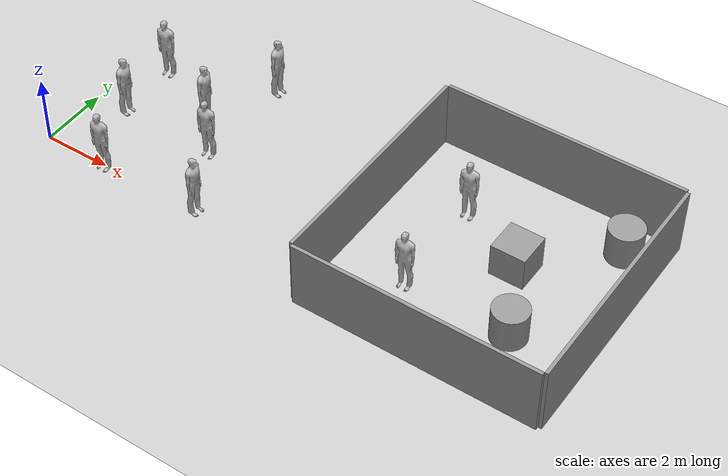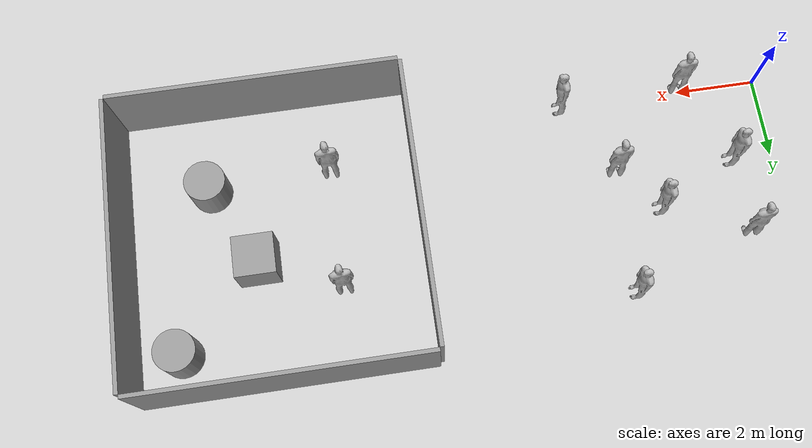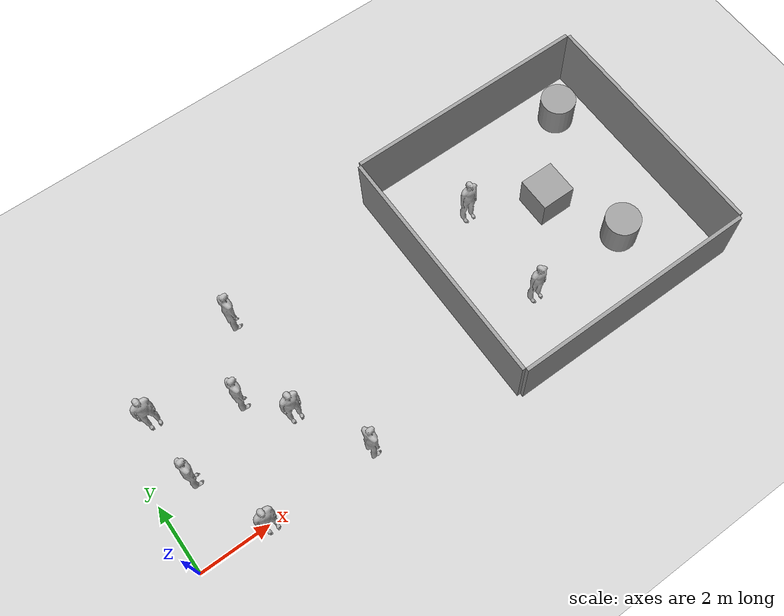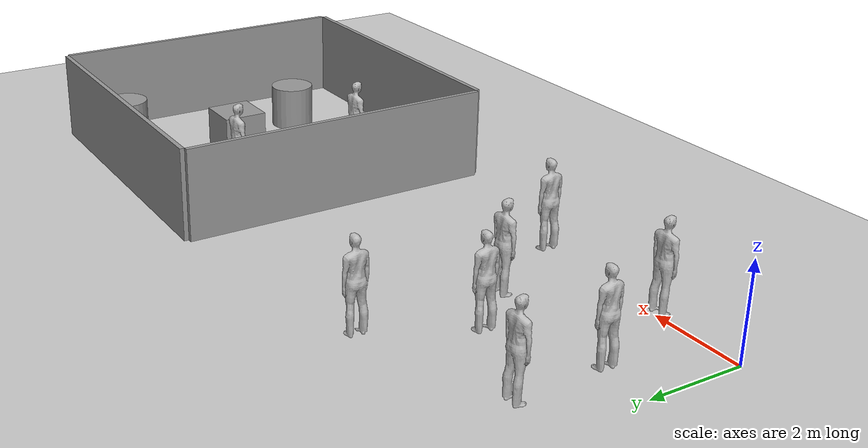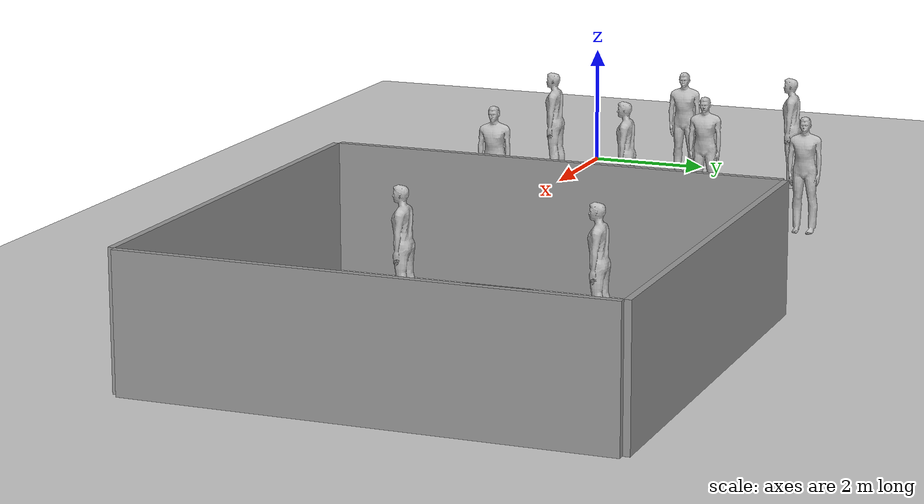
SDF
<sdf version='1.6'>
  <world name='default'>
    <include>
      <uri>model://ground_plane</uri>
    </include>

    <include>
      <uri>model://sun</uri>
    </include>

    <model name='wall_right_down'>
      <pose frame=''>10 0 0 0 0 0</pose>
      <link name='Wall_bottom'>
        <collision name='Wall_0_Collision'>
          <geometry>
            <box>
              <size>7 0.1 2</size>
            </box>
          </geometry>
          <pose frame=''>0 0 0 0 -0 0</pose>
          <max_contacts>10</max_contacts>
        </collision>
        <visual name='Wall_0_Visual'>
          <pose frame=''>0 0 0 0 -0 0</pose>
          <geometry>
            <box>
              <size>7 0.1 2</size>
            </box>
          </geometry>
          <material>
            <script>
              <uri>file://media/materials/scripts/gazebo.material</uri>
              <name>Gazebo/Grey</name>
            </script>
            <ambient>1 1 1 1</ambient>
          </material>
          <meta>
            <layer>0</layer>
          </meta>
        </visual>
        <pose frame=''>2.5 -1.05 1 0 -0 0</pose>
      </link>

      <link name='Wall_up'>
        <collision name='Wall_0_Collision'>
          <geometry>
            <box>
              <size>7 0.1 2</size>
            </box>
          </geometry>
          <pose frame=''>0 0 0 0 -0 0</pose>
          <max_contacts>10</max_contacts>
        </collision>
        <visual name='Wall_0_Visual'>
          <pose frame=''>0 0 0 0 -0 0</pose>
          <geometry>
            <box>
              <size>7 0.1 2</size>
            </box>
          </geometry>
          <material>
            <script>
              <uri>file://media/materials/scripts/gazebo.material</uri>
              <name>Gazebo/Grey</name>
            </script>
            <ambient>1 1 1 1</ambient>
          </material>
          <meta>
            <layer>0</layer>
          </meta>
        </visual>
        <pose frame=''>2.5 6.05 1 0 -0 0</pose>
      </link>

      <link name='Wall_left'>
        <collision name='Wall_1_Collision'>
          <geometry>
            <box>
              <size>0.1 7 2</size>
            </box>
          </geometry>
          <pose frame=''>0 0 0 0 -0 0</pose>
          <max_contacts>10</max_contacts>
        </collision>
        <visual name='Wall_1_Visual'>
          <pose frame=''>0 0 0 0 -0 0</pose>
          <geometry>
            <box>
              <size>0.1 7 2</size>
            </box>
          </geometry>
          <material>
            <script>
              <uri>file://media/materials/scripts/gazebo.material</uri>
              <name>Gazebo/Grey</name>
            </script>
            <ambient>1 1 1 1</ambient>
          </material>
          <meta>
            <layer>0</layer>
          </meta>
        </visual>
        <pose frame=''>-1.05 2.5 1 0 -0 0</pose>
      </link>

      <link name='Wall_right'>
        <collision name='Wall_1_Collision'>
          <geometry>
            <box>
              <size>0.1 7 2</size>
            </box>
          </geometry>
          <pose frame=''>0 0 0 0 -0 0</pose>
          <max_contacts>10</max_contacts>
        </collision>
        <visual name='Wall_1_Visual'>
          <pose frame=''>0 0 0 0 -0 0</pose>
          <geometry>
            <box>
              <size>0.1 7 2</size>
            </box>
          </geometry>
          <material>
            <script>
              <uri>file://media/materials/scripts/gazebo.material</uri>
              <name>Gazebo/Grey</name>
            </script>
            <ambient>1 1 1 1</ambient>
          </material>
          <meta>
            <layer>0</layer>
          </meta>
        </visual>
        <pose frame=''>6.05 2.5 1 0 -0 0</pose>
      </link>
      <static>1</static>
    </model>

    <model name='stand0'>
      <link name='link'>
        <inertial>
          <pose frame=''>0 -0.1 0.95 0 -0 0</pose>
          <mass>80</mass>
          <inertia>
            <ixx>24.88</ixx>
            <ixy>0</ixy>
            <ixz>0</ixz>
            <iyy>25.73</iyy>
            <iyz>0</iyz>
            <izz>2.48</izz>
          </inertia>
        </inertial>
        <collision name='bottom'>
          <pose frame=''>0 -0.1 0.01 0 -0 0</pose>
          <geometry>
            <box>
              <size>0.5 0.35 0.02</size>
            </box>
          </geometry>
          <max_contacts>10</max_contacts>
          <surface>
            <contact>
              <ode/>
            </contact>
            <bounce/>
            <friction>
              <torsional>
                <ode/>
              </torsional>
              <ode/>
            </friction>
          </surface>
        </collision>
        <collision name='person'>
          <pose frame=''>0 0 0.02 0.04 -0 0</pose>
          <geometry>
            <mesh>
              <uri>model://person_standing/meshes/standing.dae</uri>
            </mesh>
          </geometry>
          <max_contacts>10</max_contacts>
          <surface>
            <contact>
              <ode/>
            </contact>
            <bounce/>
            <friction>
              <torsional>
                <ode/>
              </torsional>
              <ode/>
            </friction>
          </surface>
        </collision>
        <visual name='visual'>
          <pose frame=''>0 0 0.02 0.04 -0 0</pose>
          <geometry>
            <mesh>
              <uri>model://person_standing/meshes/standing.dae</uri>
            </mesh>
          </geometry>
        </visual>
        <self_collide>0</self_collide>
        <enable_wind>0</enable_wind>
        <kinematic>0</kinematic>
      </link>
      <pose frame=''>1 4 0 0 -0 0</pose>
    </model>

    <model name='stand6'>
      <link name='link'>
        <inertial>
          <pose frame=''>0 -0.1 0.95 0 -0 0</pose>
          <mass>80</mass>
          <inertia>
            <ixx>24.88</ixx>
            <ixy>0</ixy>
            <ixz>0</ixz>
            <iyy>25.73</iyy>
            <iyz>0</iyz>
            <izz>2.48</izz>
          </inertia>
        </inertial>
        <collision name='bottom'>
          <pose frame=''>0 -0.1 0.01 0 -0 0</pose>
          <geometry>
            <box>
              <size>0.5 0.35 0.02</size>
            </box>
          </geometry>
          <max_contacts>10</max_contacts>
          <surface>
            <contact>
              <ode/>
            </contact>
            <bounce/>
            <friction>
              <torsional>
                <ode/>
              </torsional>
              <ode/>
            </friction>
          </surface>
        </collision>
        <collision name='person'>
          <pose frame=''>0 0 0.02 0.04 -0 0</pose>
          <geometry>
            <mesh>
              <uri>model://person_standing/meshes/standing.dae</uri>
            </mesh>
          </geometry>
          <max_contacts>10</max_contacts>
          <surface>
            <contact>
              <ode/>
            </contact>
            <bounce/>
            <friction>
              <torsional>
                <ode/>
              </torsional>
              <ode/>
            </friction>
          </surface>
        </collision>
        <visual name='visual'>
          <pose frame=''>0 0 0.02 0.04 -0 0</pose>
          <geometry>
            <mesh>
              <uri>model://person_standing/meshes/standing.dae</uri>
            </mesh>
          </geometry>
        </visual>
        <self_collide>0</self_collide>
        <enable_wind>0</enable_wind>
        <kinematic>0</kinematic>
      </link>
      <pose frame=''>4 2 0 0 -0 0</pose>
    </model>

    <model name='stand7'>
      <link name='link'>
        <inertial>
          <pose frame=''>0 -0.1 0.95 0 -0 0</pose>
          <mass>80</mass>
          <inertia>
            <ixx>24.88</ixx>
            <ixy>0</ixy>
            <ixz>0</ixz>
            <iyy>25.73</iyy>
            <iyz>0</iyz>
            <izz>2.48</izz>
          </inertia>
        </inertial>
        <collision name='bottom'>
          <pose frame=''>0 -0.1 0.01 0 -0 0</pose>
          <geometry>
            <box>
              <size>0.5 0.35 0.02</size>
            </box>
          </geometry>
          <max_contacts>10</max_contacts>
          <surface>
            <contact>
              <ode/>
            </contact>
            <bounce/>
            <friction>
              <torsional>
                <ode/>
              </torsional>
              <ode/>
            </friction>
          </surface>
        </collision>
        <collision name='person'>
          <pose frame=''>0 0 0.02 0.04 -0 0</pose>
          <geometry>
            <mesh>
              <uri>model://person_standing/meshes/standing.dae</uri>
            </mesh>
          </geometry>
          <max_contacts>10</max_contacts>
          <surface>
            <contact>
              <ode/>
            </contact>
            <bounce/>
            <friction>
              <torsional>
                <ode/>
              </torsional>
              <ode/>
            </friction>
          </surface>
        </collision>
        <visual name='visual'>
          <pose frame=''>0 0 0.02 0.04 -0 0</pose>
          <geometry>
            <mesh>
              <uri>model://person_standing/meshes/standing.dae</uri>
            </mesh>
          </geometry>
        </visual>
        <self_collide>0</self_collide>
        <enable_wind>0</enable_wind>
        <kinematic>0</kinematic>
      </link>
      <pose frame=''>3 3 0 0 -0 1.57</pose>
    </model>

    <model name='stand8'>
      <link name='link'>
        <inertial>
          <pose frame=''>0 -0.1 0.95 0 -0 0</pose>
          <mass>80</mass>
          <inertia>
            <ixx>24.88</ixx>
            <ixy>0</ixy>
            <ixz>0</ixz>
            <iyy>25.73</iyy>
            <iyz>0</iyz>
            <izz>2.48</izz>
          </inertia>
        </inertial>
        <collision name='bottom'>
          <pose frame=''>0 -0.1 0.01 0 -0 0</pose>
          <geometry>
            <box>
              <size>0.5 0.35 0.02</size>
            </box>
          </geometry>
          <max_contacts>10</max_contacts>
          <surface>
            <contact>
              <ode/>
            </contact>
            <bounce/>
            <friction>
              <torsional>
                <ode/>
              </torsional>
              <ode/>
            </friction>
          </surface>
        </collision>
        <collision name='person'>
          <pose frame=''>0 0 0.02 0.04 -0 0</pose>
          <geometry>
            <mesh>
              <uri>model://person_standing/meshes/standing.dae</uri>
            </mesh>
          </geometry>
          <max_contacts>10</max_contacts>
          <surface>
            <contact>
              <ode/>
            </contact>
            <bounce/>
            <friction>
              <torsional>
                <ode/>
              </torsional>
              <ode/>
            </friction>
          </surface>
        </collision>
        <visual name='visual'>
          <pose frame=''>0 0 0.02 0.04 -0 0</pose>
          <geometry>
            <mesh>
              <uri>model://person_standing/meshes/standing.dae</uri>
            </mesh>
          </geometry>
        </visual>
        <self_collide>0</self_collide>
        <enable_wind>0</enable_wind>
        <kinematic>0</kinematic>
      </link>
      <pose frame=''>1 2 0 0 -0 1.57</pose>
    </model>

    <model name='stand1'>
      <link name='link'>
        <inertial>
          <pose frame=''>0 -0.1 0.95 0 -0 0</pose>
          <mass>80</mass>
          <inertia>
            <ixx>24.88</ixx>
            <ixy>0</ixy>
            <ixz>0</ixz>
            <iyy>25.73</iyy>
            <iyz>0</iyz>
            <izz>2.48</izz>
          </inertia>
        </inertial>
        <collision name='bottom'>
          <pose frame=''>0 -0.1 0.01 0 -0 0</pose>
          <geometry>
            <box>
              <size>0.5 0.35 0.02</size>
            </box>
          </geometry>
          <max_contacts>10</max_contacts>
          <surface>
            <contact>
              <ode/>
            </contact>
            <bounce/>
            <friction>
              <torsional>
                <ode/>
              </torsional>
              <ode/>
            </friction>
          </surface>
        </collision>
        <collision name='person'>
          <pose frame=''>0 0 0.02 0.04 -0 0</pose>
          <geometry>
            <mesh>
              <uri>model://person_standing/meshes/standing.dae</uri>
            </mesh>
          </geometry>
          <max_contacts>10</max_contacts>
          <surface>
            <contact>
              <ode/>
            </contact>
            <bounce/>
            <friction>
              <torsional>
                <ode/>
              </torsional>
              <ode/>
            </friction>
          </surface>
        </collision>
        <visual name='visual'>
          <pose frame=''>0 0 0.02 0.04 -0 0</pose>
          <geometry>
            <mesh>
              <uri>model://person_standing/meshes/standing.dae</uri>
            </mesh>
          </geometry>
        </visual>
        <self_collide>0</self_collide>
        <enable_wind>0</enable_wind>
        <kinematic>0</kinematic>
      </link>
      <pose frame=''>5 0 0 -0 0 1.57</pose>
    </model>

    <model name='stand2'>
      <link name='link'>
        <inertial>
          <pose frame=''>0 -0.1 0.95 0 -0 0</pose>
          <mass>80</mass>
          <inertia>
            <ixx>24.88</ixx>
            <ixy>0</ixy>
            <ixz>0</ixz>
            <iyy>25.73</iyy>
            <iyz>0</iyz>
            <izz>2.48</izz>
          </inertia>
        </inertial>
        <collision name='bottom'>
          <pose frame=''>0 -0.1 0.01 0 -0 0</pose>
          <geometry>
            <box>
              <size>0.5 0.35 0.02</size>
            </box>
          </geometry>
          <max_contacts>10</max_contacts>
          <surface>
            <contact>
              <ode/>
            </contact>
            <bounce/>
            <friction>
              <torsional>
                <ode/>
              </torsional>
              <ode/>
            </friction>
          </surface>
        </collision>
        <collision name='person'>
          <pose frame=''>0 0 0.02 0.04 -0 0</pose>
          <geometry>
            <mesh>
              <uri>model://person_standing/meshes/standing.dae</uri>
            </mesh>
          </geometry>
          <max_contacts>10</max_contacts>
          <surface>
            <contact>
              <ode/>
            </contact>
            <bounce/>
            <friction>
              <torsional>
                <ode/>
              </torsional>
              <ode/>
            </friction>
          </surface>
        </collision>
        <visual name='visual'>
          <pose frame=''>0 0 0.02 0.04 -0 0</pose>
          <geometry>
            <mesh>
              <uri>model://person_standing/meshes/standing.dae</uri>
            </mesh>
          </geometry>
        </visual>
        <self_collide>0</self_collide>
        <enable_wind>0</enable_wind>
        <kinematic>0</kinematic>
      </link>
      <pose frame=''>4 5 0 -0 0 1.57</pose>
    </model>

    <model name='stand3'>
      <link name='link'>
        <inertial>
          <pose frame=''>0 -0.1 0.95 0 -0 0</pose>
          <mass>80</mass>
          <inertia>
            <ixx>24.88</ixx>
            <ixy>0</ixy>
            <ixz>0</ixz>
            <iyy>25.73</iyy>
            <iyz>0</iyz>
            <izz>2.48</izz>
          </inertia>
        </inertial>
        <collision name='bottom'>
          <pose frame=''>0 -0.1 0.01 0 -0 0</pose>
          <geometry>
            <box>
              <size>0.5 0.35 0.02</size>
            </box>
          </geometry>
          <max_contacts>10</max_contacts>
          <surface>
            <contact>
              <ode/>
            </contact>
            <bounce/>
            <friction>
              <torsional>
                <ode/>
              </torsional>
              <ode/>
            </friction>
          </surface>
        </collision>
        <collision name='person'>
          <pose frame=''>0 0 0.02 0.04 -0 0</pose>
          <geometry>
            <mesh>
              <uri>model://person_standing/meshes/standing.dae</uri>
            </mesh>
          </geometry>
          <max_contacts>10</max_contacts>
          <surface>
            <contact>
              <ode/>
            </contact>
            <bounce/>
            <friction>
              <torsional>
                <ode/>
              </torsional>
              <ode/>
            </friction>
          </surface>
        </collision>
        <visual name='visual'>
          <pose frame=''>0 0 0.02 0.04 -0 0</pose>
          <geometry>
            <mesh>
              <uri>model://person_standing/meshes/standing.dae</uri>
            </mesh>
          </geometry>
        </visual>
        <self_collide>0</self_collide>
        <enable_wind>0</enable_wind>
        <kinematic>0</kinematic>
      </link>
      <pose frame=''>2 0 0 -0 0 0</pose>
    </model>

    <model name='stand4'>
      <link name='link'>
        <inertial>
          <pose frame=''>0 -0.1 0.95 0 -0 0</pose>
          <mass>80</mass>
          <inertia>
            <ixx>24.88</ixx>
            <ixy>0</ixy>
            <ixz>0</ixz>
            <iyy>25.73</iyy>
            <iyz>0</iyz>
            <izz>2.48</izz>
          </inertia>
        </inertial>
        <collision name='bottom'>
          <pose frame=''>0 -0.1 0.01 0 -0 0</pose>
          <geometry>
            <box>
              <size>0.5 0.35 0.02</size>
            </box>
          </geometry>
          <max_contacts>10</max_contacts>
          <surface>
            <contact>
              <ode/>
            </contact>
            <bounce/>
            <friction>
              <torsional>
                <ode/>
              </torsional>
              <ode/>
            </friction>
          </surface>
        </collision>
        <collision name='person'>
          <pose frame=''>0 0 0.02 0.04 -0 0</pose>
          <geometry>
            <mesh>
              <uri>model://person_standing/meshes/standing.dae</uri>
            </mesh>
          </geometry>
          <max_contacts>10</max_contacts>
          <surface>
            <contact>
              <ode/>
            </contact>
            <bounce/>
            <friction>
              <torsional>
                <ode/>
              </torsional>
              <ode/>
            </friction>
          </surface>
        </collision>
        <visual name='visual'>
          <pose frame=''>0 0 0.02 0.04 -0 0</pose>
          <geometry>
            <mesh>
              <uri>model://person_standing/meshes/standing.dae</uri>
            </mesh>
          </geometry>
        </visual>
        <self_collide>0</self_collide>
        <enable_wind>0</enable_wind>
        <kinematic>0</kinematic>
      </link>
      <pose frame=''>11 1 0 -0 0 0</pose>
    </model>

    <model name='stand5'>
      <link name='link'>
        <inertial>
          <pose frame=''>0 -0.1 0.95 0 -0 0</pose>
          <mass>80</mass>
          <inertia>
            <ixx>24.88</ixx>
            <ixy>0</ixy>
            <ixz>0</ixz>
            <iyy>25.73</iyy>
            <iyz>0</iyz>
            <izz>2.48</izz>
          </inertia>
        </inertial>
        <collision name='bottom'>
          <pose frame=''>0 -0.1 0.01 0 -0 0</pose>
          <geometry>
            <box>
              <size>0.5 0.35 0.02</size>
            </box>
          </geometry>
          <max_contacts>10</max_contacts>
          <surface>
            <contact>
              <ode/>
            </contact>
            <bounce/>
            <friction>
              <torsional>
                <ode/>
              </torsional>
              <ode/>
            </friction>
          </surface>
        </collision>
        <collision name='person'>
          <pose frame=''>0 0 0.02 0.04 -0 0</pose>
          <geometry>
            <mesh>
              <uri>model://person_standing/meshes/standing.dae</uri>
            </mesh>
          </geometry>
          <max_contacts>10</max_contacts>
          <surface>
            <contact>
              <ode/>
            </contact>
            <bounce/>
            <friction>
              <torsional>
                <ode/>
              </torsional>
              <ode/>
            </friction>
          </surface>
        </collision>
        <visual name='visual'>
          <pose frame=''>0 0 0.02 0.04 -0 0</pose>
          <geometry>
            <mesh>
              <uri>model://person_standing/meshes/standing.dae</uri>
            </mesh>
          </geometry>
        </visual>
        <self_collide>0</self_collide>
        <enable_wind>0</enable_wind>
        <kinematic>0</kinematic>
      </link>
      <pose frame=''>11 4 0 -0 0 0</pose>
    </model>

    <model name='unit_box'>
      <pose frame=''>13 3 0.5 0 -0 0</pose>
      <link name='link'>
        <inertial>
          <mass>1</mass>
          <inertia>
            <ixx>0.166667</ixx>
            <ixy>0</ixy>
            <ixz>0</ixz>
            <iyy>0.166667</iyy>
            <iyz>0</iyz>
            <izz>0.166667</izz>
          </inertia>
          <pose frame=''>0 0 0 0 -0 0</pose>
        </inertial>
        <collision name='collision'>
          <geometry>
            <box>
              <size>1 1 1</size>
            </box>
          </geometry>
          <max_contacts>10</max_contacts>
          <surface>
            <contact>
              <ode/>
            </contact>
            <bounce/>
            <friction>
              <torsional>
                <ode/>
              </torsional>
              <ode/>
            </friction>
          </surface>
        </collision>
        <visual name='visual'>
          <geometry>
            <box>
              <size>1 1 1</size>
            </box>
          </geometry>
          <material>
            <script>
              <name>Gazebo/Grey</name>
              <uri>file://media/materials/scripts/gazebo.material</uri>
            </script>
          </material>
        </visual>
        <self_collide>0</self_collide>
        <enable_wind>0</enable_wind>
        <kinematic>0</kinematic>
      </link>
    </model>

    <model name='unit_cylinder0'>
      <pose frame=''>14 1 0.5 0 -0 0</pose>
      <link name='link'>
        <inertial>
          <mass>1</mass>
          <inertia>
            <ixx>0.145833</ixx>
            <ixy>0</ixy>
            <ixz>0</ixz>
            <iyy>0.145833</iyy>
            <iyz>0</iyz>
            <izz>0.125</izz>
          </inertia>
          <pose frame=''>0 0 0 0 -0 0</pose>
        </inertial>
        <collision name='collision'>
          <geometry>
            <cylinder>
              <radius>0.5</radius>
              <length>1</length>
            </cylinder>
          </geometry>
          <max_contacts>10</max_contacts>
          <surface>
            <contact>
              <ode/>
            </contact>
            <bounce/>
            <friction>
              <torsional>
                <ode/>
              </torsional>
              <ode/>
            </friction>
          </surface>
        </collision>
        <visual name='visual'>
          <geometry>
            <cylinder>
              <radius>0.5</radius>
              <length>1</length>
            </cylinder>
          </geometry>
          <material>
            <script>
              <name>Gazebo/Grey</name>
              <uri>file://media/materials/scripts/gazebo.material</uri>
            </script>
          </material>
        </visual>
        <self_collide>0</self_collide>
        <enable_wind>0</enable_wind>
        <kinematic>0</kinematic>
      </link>
    </model>

    <model name='unit_cylinder1'>
      <pose frame=''>15 5 0.5 0 -0 0</pose>
      <link name='link'>
        <inertial>
          <mass>1</mass>
          <inertia>
            <ixx>0.145833</ixx>
            <ixy>0</ixy>
            <ixz>0</ixz>
            <iyy>0.145833</iyy>
            <iyz>0</iyz>
            <izz>0.125</izz>
          </inertia>
          <pose frame=''>0 0 0 0 -0 0</pose>
        </inertial>
        <collision name='collision'>
          <geometry>
            <cylinder>
              <radius>0.5</radius>
              <length>1</length>
            </cylinder>
          </geometry>
          <max_contacts>10</max_contacts>
          <surface>
            <contact>
              <ode/>
            </contact>
            <bounce/>
            <friction>
              <torsional>
                <ode/>
              </torsional>
              <ode/>
            </friction>
          </surface>
        </collision>
        <visual name='visual'>
          <geometry>
            <cylinder>
              <radius>0.5</radius>
              <length>1</length>
            </cylinder>
          </geometry>
          <material>
            <script>
              <name>Gazebo/Grey</name>
              <uri>file://media/materials/scripts/gazebo.material</uri>
            </script>
          </material>
        </visual>
        <self_collide>0</self_collide>
        <enable_wind>0</enable_wind>
        <kinematic>0</kinematic>
      </link>
    </model>
  </world>
</sdf>
